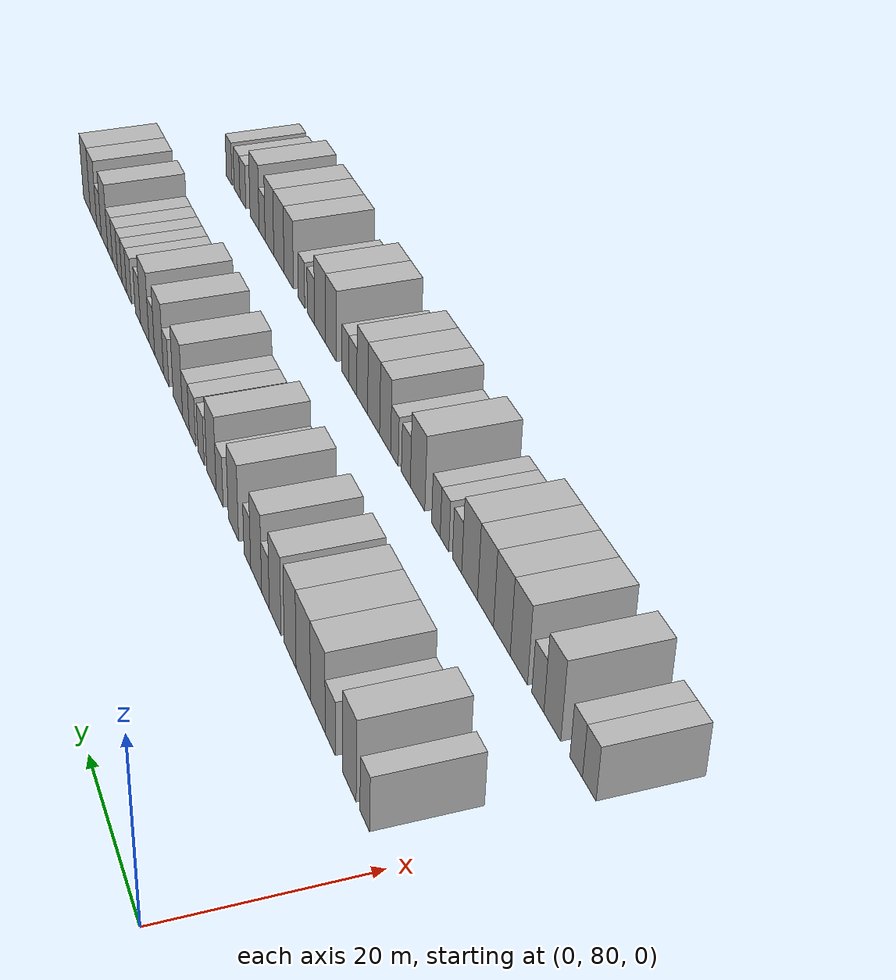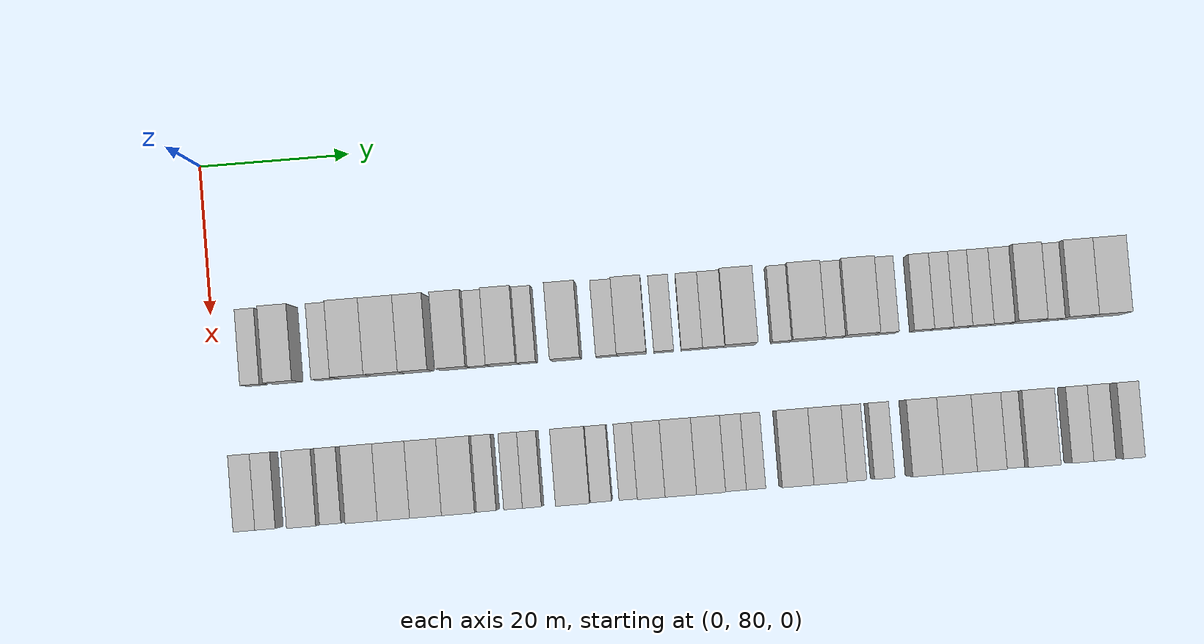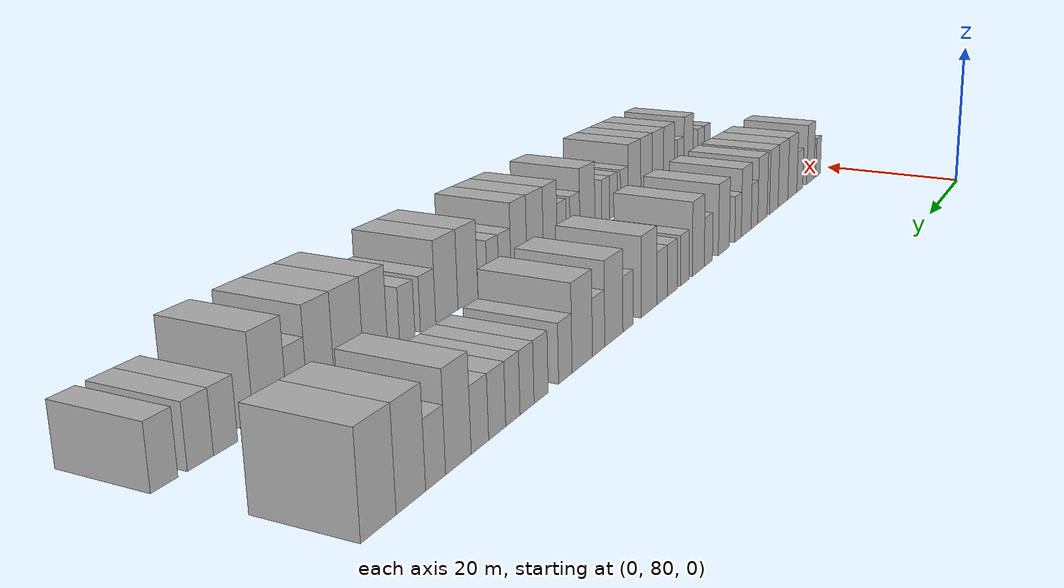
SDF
<sdf version="1.6">
 <world name="default">
  <model name="building_54">
   <static>1</static>
   <pose>25.0000 85.5860 0 0.000000 0.000000 0.000000</pose>
   <link name="link">
    <pose>0 0 3.00 0 0 0</pose>
    <collision name="collision"><geometry><box><size>10.0000 2.5500 6.0000</size></box></geometry></collision>
    <visual name="visual">
     <cast_shadows>0</cast_shadows>
     <geometry><box><size>10.0000 2.5500 6.0000</size></box></geometry>
     <material>
      <script>
       <uri>model://HANNAS_wall/materials/scripts</uri>
       <uri>model://HANNAS_wall/materials/textures</uri>
       <name>vrc/HANNAS_wall</name>
      </script>
     </material>
    </visual>
   </link>
  </model>
  <model name="building_55">
   <static>1</static>
   <pose>25.0000 89.7523 0 0.000000 0.000000 0.000000</pose>
   <link name="link">
    <pose>0 0 4.50 0 0 0</pose>
    <collision name="collision"><geometry><box><size>10.0000 3.7826 9.0000</size></box></geometry></collision>
    <visual name="visual">
     <cast_shadows>0</cast_shadows>
     <geometry><box><size>10.0000 3.7826 9.0000</size></box></geometry>
     <material>
      <script>
       <uri>model://HANNAS_wall/materials/scripts</uri>
       <uri>model://HANNAS_wall/materials/textures</uri>
       <name>vrc/HANNAS_wall</name>
      </script>
     </material>
    </visual>
   </link>
  </model>
  <model name="building_56">
   <static>1</static>
   <pose>25.0000 95.1099 0 0.000000 0.000000 0.000000</pose>
   <link name="link">
    <pose>0 0 3.00 0 0 0</pose>
    <collision name="collision"><geometry><box><size>10.0000 2.9327 6.0000</size></box></geometry></collision>
    <visual name="visual">
     <cast_shadows>0</cast_shadows>
     <geometry><box><size>10.0000 2.9327 6.0000</size></box></geometry>
     <material>
      <script>
       <uri>model://HANNAS_wall/materials/scripts</uri>
       <uri>model://HANNAS_wall/materials/textures</uri>
       <name>vrc/HANNAS_wall</name>
      </script>
     </material>
    </visual>
   </link>
  </model>
  <model name="building_57">
   <static>1</static>
   <pose>25.0000 98.7507 0 0.000000 0.000000 0.000000</pose>
   <link name="link">
    <pose>0 0 4.50 0 0 0</pose>
    <collision name="collision"><geometry><box><size>10.0000 4.3488 9.0000</size></box></geometry></collision>
    <visual name="visual">
     <cast_shadows>0</cast_shadows>
     <geometry><box><size>10.0000 4.3488 9.0000</size></box></geometry>
     <material>
      <script>
       <uri>model://HANNAS_wall/materials/scripts</uri>
       <uri>model://HANNAS_wall/materials/textures</uri>
       <name>vrc/HANNAS_wall</name>
      </script>
     </material>
    </visual>
   </link>
  </model>
  <model name="building_58">
   <static>1</static>
   <pose>25.0000 103.1546 0 0.000000 0.000000 0.000000</pose>
   <link name="link">
    <pose>0 0 4.50 0 0 0</pose>
    <collision name="collision"><geometry><box><size>10.0000 4.4590 9.0000</size></box></geometry></collision>
    <visual name="visual">
     <cast_shadows>0</cast_shadows>
     <geometry><box><size>10.0000 4.4590 9.0000</size></box></geometry>
     <material>
      <script>
       <uri>model://HANNAS_wall/materials/scripts</uri>
       <uri>model://HANNAS_wall/materials/textures</uri>
       <name>vrc/HANNAS_wall</name>
      </script>
     </material>
    </visual>
   </link>
  </model>
  <model name="building_59">
   <static>1</static>
   <pose>25.0000 107.3013 0 0.000000 0.000000 0.000000</pose>
   <link name="link">
    <pose>0 0 4.50 0 0 0</pose>
    <collision name="collision"><geometry><box><size>10.0000 3.8344 9.0000</size></box></geometry></collision>
    <visual name="visual">
     <cast_shadows>0</cast_shadows>
     <geometry><box><size>10.0000 3.8344 9.0000</size></box></geometry>
     <material>
      <script>
       <uri>model://HANNAS_wall/materials/scripts</uri>
       <uri>model://HANNAS_wall/materials/textures</uri>
       <name>vrc/HANNAS_wall</name>
      </script>
     </material>
    </visual>
   </link>
  </model>
  <model name="building_60">
   <static>1</static>
   <pose>25.0000 112.1923 0 0.000000 0.000000 0.000000</pose>
   <link name="link">
    <pose>0 0 4.50 0 0 0</pose>
    <collision name="collision"><geometry><box><size>10.0000 3.9476 9.0000</size></box></geometry></collision>
    <visual name="visual">
     <cast_shadows>0</cast_shadows>
     <geometry><box><size>10.0000 3.9476 9.0000</size></box></geometry>
     <material>
      <script>
       <uri>model://HANNAS_wall/materials/scripts</uri>
       <uri>model://HANNAS_wall/materials/textures</uri>
       <name>vrc/HANNAS_wall</name>
      </script>
     </material>
    </visual>
   </link>
  </model>
  <model name="building_61">
   <static>1</static>
   <pose>25.0000 115.4911 0 0.000000 0.000000 0.000000</pose>
   <link name="link">
    <pose>0 0 3.00 0 0 0</pose>
    <collision name="collision"><geometry><box><size>10.0000 2.6501 6.0000</size></box></geometry></collision>
    <visual name="visual">
     <cast_shadows>0</cast_shadows>
     <geometry><box><size>10.0000 2.6501 6.0000</size></box></geometry>
     <material>
      <script>
       <uri>model://HANNAS_wall/materials/scripts</uri>
       <uri>model://HANNAS_wall/materials/textures</uri>
       <name>vrc/HANNAS_wall</name>
      </script>
     </material>
    </visual>
   </link>
  </model>
  <model name="building_62">
   <static>1</static>
   <pose>25.0000 118.7586 0 0.000000 0.000000 0.000000</pose>
   <link name="link">
    <pose>0 0 4.50 0 0 0</pose>
    <collision name="collision"><geometry><box><size>10.0000 3.8848 9.0000</size></box></geometry></collision>
    <visual name="visual">
     <cast_shadows>0</cast_shadows>
     <geometry><box><size>10.0000 3.8848 9.0000</size></box></geometry>
     <material>
      <script>
       <uri>model://HANNAS_wall/materials/scripts</uri>
       <uri>model://HANNAS_wall/materials/textures</uri>
       <name>vrc/HANNAS_wall</name>
      </script>
     </material>
    </visual>
   </link>
  </model>
  <model name="building_63">
   <static>1</static>
   <pose>25.0000 121.9209 0 0.000000 0.000000 0.000000</pose>
   <link name="link">
    <pose>0 0 3.00 0 0 0</pose>
    <collision name="collision"><geometry><box><size>10.0000 2.4398 6.0000</size></box></geometry></collision>
    <visual name="visual">
     <cast_shadows>0</cast_shadows>
     <geometry><box><size>10.0000 2.4398 6.0000</size></box></geometry>
     <material>
      <script>
       <uri>model://HANNAS_wall/materials/scripts</uri>
       <uri>model://HANNAS_wall/materials/textures</uri>
       <name>vrc/HANNAS_wall</name>
      </script>
     </material>
    </visual>
   </link>
  </model>
  <model name="building_64">
   <static>1</static>
   <pose>25.0000 127.0968 0 0.000000 0.000000 0.000000</pose>
   <link name="link">
    <pose>0 0 4.50 0 0 0</pose>
    <collision name="collision"><geometry><box><size>10.0000 3.9120 9.0000</size></box></geometry></collision>
    <visual name="visual">
     <cast_shadows>0</cast_shadows>
     <geometry><box><size>10.0000 3.9120 9.0000</size></box></geometry>
     <material>
      <script>
       <uri>model://HANNAS_wall/materials/scripts</uri>
       <uri>model://HANNAS_wall/materials/textures</uri>
       <name>vrc/HANNAS_wall</name>
      </script>
     </material>
    </visual>
   </link>
  </model>
  <model name="building_65">
   <static>1</static>
   <pose>25.0000 132.4365 0 0.000000 0.000000 0.000000</pose>
   <link name="link">
    <pose>0 0 3.00 0 0 0</pose>
    <collision name="collision"><geometry><box><size>10.0000 2.7674 6.0000</size></box></geometry></collision>
    <visual name="visual">
     <cast_shadows>0</cast_shadows>
     <geometry><box><size>10.0000 2.7674 6.0000</size></box></geometry>
     <material>
      <script>
       <uri>model://HANNAS_wall/materials/scripts</uri>
       <uri>model://HANNAS_wall/materials/textures</uri>
       <name>vrc/HANNAS_wall</name>
      </script>
     </material>
    </visual>
   </link>
  </model>
  <model name="building_66">
   <static>1</static>
   <pose>25.0000 135.7534 0 0.000000 0.000000 0.000000</pose>
   <link name="link">
    <pose>0 0 4.50 0 0 0</pose>
    <collision name="collision"><geometry><box><size>10.0000 3.8664 9.0000</size></box></geometry></collision>
    <visual name="visual">
     <cast_shadows>0</cast_shadows>
     <geometry><box><size>10.0000 3.8664 9.0000</size></box></geometry>
     <material>
      <script>
       <uri>model://HANNAS_wall/materials/scripts</uri>
       <uri>model://HANNAS_wall/materials/textures</uri>
       <name>vrc/HANNAS_wall</name>
      </script>
     </material>
    </visual>
   </link>
  </model>
  <model name="building_67">
   <static>1</static>
   <pose>25.0000 139.9973 0 0.000000 0.000000 0.000000</pose>
   <link name="link">
    <pose>0 0 3.00 0 0 0</pose>
    <collision name="collision"><geometry><box><size>10.0000 2.6214 6.0000</size></box></geometry></collision>
    <visual name="visual">
     <cast_shadows>0</cast_shadows>
     <geometry><box><size>10.0000 2.6214 6.0000</size></box></geometry>
     <material>
      <script>
       <uri>model://HANNAS_wall/materials/scripts</uri>
       <uri>model://HANNAS_wall/materials/textures</uri>
       <name>vrc/HANNAS_wall</name>
      </script>
     </material>
    </visual>
   </link>
  </model>
  <model name="building_68">
   <static>1</static>
   <pose>25.0000 143.7185 0 0.000000 0.000000 0.000000</pose>
   <link name="link">
    <pose>0 0 3.00 0 0 0</pose>
    <collision name="collision"><geometry><box><size>10.0000 2.8210 6.0000</size></box></geometry></collision>
    <visual name="visual">
     <cast_shadows>0</cast_shadows>
     <geometry><box><size>10.0000 2.8210 6.0000</size></box></geometry>
     <material>
      <script>
       <uri>model://HANNAS_wall/materials/scripts</uri>
       <uri>model://HANNAS_wall/materials/textures</uri>
       <name>vrc/HANNAS_wall</name>
      </script>
     </material>
    </visual>
   </link>
  </model>
  <model name="building_69">
   <static>1</static>
   <pose>25.0000 146.5815 0 0.000000 0.000000 0.000000</pose>
   <link name="link">
    <pose>0 0 3.00 0 0 0</pose>
    <collision name="collision"><geometry><box><size>10.0000 2.9051 6.0000</size></box></geometry></collision>
    <visual name="visual">
     <cast_shadows>0</cast_shadows>
     <geometry><box><size>10.0000 2.9051 6.0000</size></box></geometry>
     <material>
      <script>
       <uri>model://HANNAS_wall/materials/scripts</uri>
       <uri>model://HANNAS_wall/materials/textures</uri>
       <name>vrc/HANNAS_wall</name>
      </script>
     </material>
    </visual>
   </link>
  </model>
  <model name="building_70">
   <static>1</static>
   <pose>25.0000 150.1681 0 0.000000 0.000000 0.000000</pose>
   <link name="link">
    <pose>0 0 4.50 0 0 0</pose>
    <collision name="collision"><geometry><box><size>10.0000 4.2681 9.0000</size></box></geometry></collision>
    <visual name="visual">
     <cast_shadows>0</cast_shadows>
     <geometry><box><size>10.0000 4.2681 9.0000</size></box></geometry>
     <material>
      <script>
       <uri>model://HANNAS_wall/materials/scripts</uri>
       <uri>model://HANNAS_wall/materials/textures</uri>
       <name>vrc/HANNAS_wall</name>
      </script>
     </material>
    </visual>
   </link>
  </model>
  <model name="building_71">
   <static>1</static>
   <pose>25.0000 155.5696 0 0.000000 0.000000 0.000000</pose>
   <link name="link">
    <pose>0 0 3.00 0 0 0</pose>
    <collision name="collision"><geometry><box><size>10.0000 2.5348 6.0000</size></box></geometry></collision>
    <visual name="visual">
     <cast_shadows>0</cast_shadows>
     <geometry><box><size>10.0000 2.5348 6.0000</size></box></geometry>
     <material>
      <script>
       <uri>model://HANNAS_wall/materials/scripts</uri>
       <uri>model://HANNAS_wall/materials/textures</uri>
       <name>vrc/HANNAS_wall</name>
      </script>
     </material>
    </visual>
   </link>
  </model>
  <model name="building_72">
   <static>1</static>
   <pose>25.0000 158.9892 0 0.000000 0.000000 0.000000</pose>
   <link name="link">
    <pose>0 0 4.50 0 0 0</pose>
    <collision name="collision"><geometry><box><size>10.0000 4.3045 9.0000</size></box></geometry></collision>
    <visual name="visual">
     <cast_shadows>0</cast_shadows>
     <geometry><box><size>10.0000 4.3045 9.0000</size></box></geometry>
     <material>
      <script>
       <uri>model://HANNAS_wall/materials/scripts</uri>
       <uri>model://HANNAS_wall/materials/textures</uri>
       <name>vrc/HANNAS_wall</name>
      </script>
     </material>
    </visual>
   </link>
  </model>
  <model name="building_73">
   <static>1</static>
   <pose>25.0000 162.5300 0 0.000000 0.000000 0.000000</pose>
   <link name="link">
    <pose>0 0 3.00 0 0 0</pose>
    <collision name="collision"><geometry><box><size>10.0000 2.7771 6.0000</size></box></geometry></collision>
    <visual name="visual">
     <cast_shadows>0</cast_shadows>
     <geometry><box><size>10.0000 2.7771 6.0000</size></box></geometry>
     <material>
      <script>
       <uri>model://HANNAS_wall/materials/scripts</uri>
       <uri>model://HANNAS_wall/materials/textures</uri>
       <name>vrc/HANNAS_wall</name>
      </script>
     </material>
    </visual>
   </link>
  </model>
  <model name="building_74">
   <static>1</static>
   <pose>25.0000 166.0913 0 0.000000 0.000000 0.000000</pose>
   <link name="link">
    <pose>0 0 4.50 0 0 0</pose>
    <collision name="collision"><geometry><box><size>10.0000 4.3456 9.0000</size></box></geometry></collision>
    <visual name="visual">
     <cast_shadows>0</cast_shadows>
     <geometry><box><size>10.0000 4.3456 9.0000</size></box></geometry>
     <material>
      <script>
       <uri>model://HANNAS_wall/materials/scripts</uri>
       <uri>model://HANNAS_wall/materials/textures</uri>
       <name>vrc/HANNAS_wall</name>
      </script>
     </material>
    </visual>
   </link>
  </model>
  <model name="building_75">
   <static>1</static>
   <pose>25.0000 169.6280 0 0.000000 0.000000 0.000000</pose>
   <link name="link">
    <pose>0 0 3.00 0 0 0</pose>
    <collision name="collision"><geometry><box><size>10.0000 2.7278 6.0000</size></box></geometry></collision>
    <visual name="visual">
     <cast_shadows>0</cast_shadows>
     <geometry><box><size>10.0000 2.7278 6.0000</size></box></geometry>
     <material>
      <script>
       <uri>model://HANNAS_wall/materials/scripts</uri>
       <uri>model://HANNAS_wall/materials/textures</uri>
       <name>vrc/HANNAS_wall</name>
      </script>
     </material>
    </visual>
   </link>
  </model>
  <model name="building_76">
   <static>1</static>
   <pose>25.0000 174.3252 0 0.000000 0.000000 0.000000</pose>
   <link name="link">
    <pose>0 0 3.00 0 0 0</pose>
    <collision name="collision"><geometry><box><size>10.0000 2.6667 6.0000</size></box></geometry></collision>
    <visual name="visual">
     <cast_shadows>0</cast_shadows>
     <geometry><box><size>10.0000 2.6667 6.0000</size></box></geometry>
     <material>
      <script>
       <uri>model://HANNAS_wall/materials/scripts</uri>
       <uri>model://HANNAS_wall/materials/textures</uri>
       <name>vrc/HANNAS_wall</name>
      </script>
     </material>
    </visual>
   </link>
  </model>
  <model name="building_77">
   <static>1</static>
   <pose>25.0000 176.9212 0 0.000000 0.000000 0.000000</pose>
   <link name="link">
    <pose>0 0 3.00 0 0 0</pose>
    <collision name="collision"><geometry><box><size>10.0000 2.5252 6.0000</size></box></geometry></collision>
    <visual name="visual">
     <cast_shadows>0</cast_shadows>
     <geometry><box><size>10.0000 2.5252 6.0000</size></box></geometry>
     <material>
      <script>
       <uri>model://HANNAS_wall/materials/scripts</uri>
       <uri>model://HANNAS_wall/materials/textures</uri>
       <name>vrc/HANNAS_wall</name>
      </script>
     </material>
    </visual>
   </link>
  </model>
  <model name="building_78">
   <static>1</static>
   <pose>25.0000 179.4303 0 0.000000 0.000000 0.000000</pose>
   <link name="link">
    <pose>0 0 3.00 0 0 0</pose>
    <collision name="collision"><geometry><box><size>10.0000 2.4930 6.0000</size></box></geometry></collision>
    <visual name="visual">
     <cast_shadows>0</cast_shadows>
     <geometry><box><size>10.0000 2.4930 6.0000</size></box></geometry>
     <material>
      <script>
       <uri>model://HANNAS_wall/materials/scripts</uri>
       <uri>model://HANNAS_wall/materials/textures</uri>
       <name>vrc/HANNAS_wall</name>
      </script>
     </material>
    </visual>
   </link>
  </model>
  <model name="building_79">
   <static>1</static>
   <pose>25.0000 182.0855 0 0.000000 0.000000 0.000000</pose>
   <link name="link">
    <pose>0 0 3.00 0 0 0</pose>
    <collision name="collision"><geometry><box><size>10.0000 2.8174 6.0000</size></box></geometry></collision>
    <visual name="visual">
     <cast_shadows>0</cast_shadows>
     <geometry><box><size>10.0000 2.8174 6.0000</size></box></geometry>
     <material>
      <script>
       <uri>model://HANNAS_wall/materials/scripts</uri>
       <uri>model://HANNAS_wall/materials/textures</uri>
       <name>vrc/HANNAS_wall</name>
      </script>
     </material>
    </visual>
   </link>
  </model>
  <model name="building_80">
   <static>1</static>
   <pose>25.0000 184.8703 0 0.000000 0.000000 0.000000</pose>
   <link name="link">
    <pose>0 0 3.00 0 0 0</pose>
    <collision name="collision"><geometry><box><size>10.0000 2.7523 6.0000</size></box></geometry></collision>
    <visual name="visual">
     <cast_shadows>0</cast_shadows>
     <geometry><box><size>10.0000 2.7523 6.0000</size></box></geometry>
     <material>
      <script>
       <uri>model://HANNAS_wall/materials/scripts</uri>
       <uri>model://HANNAS_wall/materials/textures</uri>
       <name>vrc/HANNAS_wall</name>
      </script>
     </material>
    </visual>
   </link>
  </model>
  <model name="building_81">
   <static>1</static>
   <pose>25.0000 188.1498 0 0.000000 0.000000 0.000000</pose>
   <link name="link">
    <pose>0 0 4.50 0 0 0</pose>
    <collision name="collision"><geometry><box><size>10.0000 3.8069 9.0000</size></box></geometry></collision>
    <visual name="visual">
     <cast_shadows>0</cast_shadows>
     <geometry><box><size>10.0000 3.8069 9.0000</size></box></geometry>
     <material>
      <script>
       <uri>model://HANNAS_wall/materials/scripts</uri>
       <uri>model://HANNAS_wall/materials/textures</uri>
       <name>vrc/HANNAS_wall</name>
      </script>
     </material>
    </visual>
   </link>
  </model>
  <model name="building_82">
   <static>1</static>
   <pose>25.0000 191.4503 0 0.000000 0.000000 0.000000</pose>
   <link name="link">
    <pose>0 0 3.00 0 0 0</pose>
    <collision name="collision"><geometry><box><size>10.0000 2.7940 6.0000</size></box></geometry></collision>
    <visual name="visual">
     <cast_shadows>0</cast_shadows>
     <geometry><box><size>10.0000 2.7940 6.0000</size></box></geometry>
     <material>
      <script>
       <uri>model://HANNAS_wall/materials/scripts</uri>
       <uri>model://HANNAS_wall/materials/textures</uri>
       <name>vrc/HANNAS_wall</name>
      </script>
     </material>
    </visual>
   </link>
  </model>
  <model name="building_83">
   <static>1</static>
   <pose>25.0000 194.7949 0 0.000000 0.000000 0.000000</pose>
   <link name="link">
    <pose>0 0 4.50 0 0 0</pose>
    <collision name="collision"><geometry><box><size>10.0000 3.8952 9.0000</size></box></geometry></collision>
    <visual name="visual">
     <cast_shadows>0</cast_shadows>
     <geometry><box><size>10.0000 3.8952 9.0000</size></box></geometry>
     <material>
      <script>
       <uri>model://HANNAS_wall/materials/scripts</uri>
       <uri>model://HANNAS_wall/materials/textures</uri>
       <name>vrc/HANNAS_wall</name>
      </script>
     </material>
    </visual>
   </link>
  </model>
  <model name="building_84">
   <static>1</static>
   <pose>25.0000 198.9164 0 0.000000 0.000000 0.000000</pose>
   <link name="link">
    <pose>0 0 4.50 0 0 0</pose>
    <collision name="collision"><geometry><box><size>10.0000 4.3479 9.0000</size></box></geometry></collision>
    <visual name="visual">
     <cast_shadows>0</cast_shadows>
     <geometry><box><size>10.0000 4.3479 9.0000</size></box></geometry>
     <material>
      <script>
       <uri>model://HANNAS_wall/materials/scripts</uri>
       <uri>model://HANNAS_wall/materials/textures</uri>
       <name>vrc/HANNAS_wall</name>
      </script>
     </material>
    </visual>
   </link>
  </model>
  <model name="building_156">
   <static>1</static>
   <pose>44.0000 83.4710 0 0.000000 0.000000 0.000000</pose>
   <link name="link">
    <pose>0 0 3.00 0 0 0</pose>
    <collision name="collision"><geometry><box><size>10.0000 2.8450 6.0000</size></box></geometry></collision>
    <visual name="visual">
     <cast_shadows>0</cast_shadows>
     <geometry><box><size>10.0000 2.8450 6.0000</size></box></geometry>
     <material>
      <script>
       <uri>model://HANNAS_wall/materials/scripts</uri>
       <uri>model://HANNAS_wall/materials/textures</uri>
       <name>vrc/HANNAS_wall</name>
      </script>
     </material>
    </visual>
   </link>
  </model>
  <model name="building_157">
   <static>1</static>
   <pose>44.0000 86.2303 0 0.000000 0.000000 0.000000</pose>
   <link name="link">
    <pose>0 0 3.00 0 0 0</pose>
    <collision name="collision"><geometry><box><size>10.0000 2.6737 6.0000</size></box></geometry></collision>
    <visual name="visual">
     <cast_shadows>0</cast_shadows>
     <geometry><box><size>10.0000 2.6737 6.0000</size></box></geometry>
     <material>
      <script>
       <uri>model://HANNAS_wall/materials/scripts</uri>
       <uri>model://HANNAS_wall/materials/textures</uri>
       <name>vrc/HANNAS_wall</name>
      </script>
     </material>
    </visual>
   </link>
  </model>
  <model name="building_158">
   <static>1</static>
   <pose>44.0000 91.4671 0 0.000000 0.000000 0.000000</pose>
   <link name="link">
    <pose>0 0 4.50 0 0 0</pose>
    <collision name="collision"><geometry><box><size>10.0000 3.7999 9.0000</size></box></geometry></collision>
    <visual name="visual">
     <cast_shadows>0</cast_shadows>
     <geometry><box><size>10.0000 3.7999 9.0000</size></box></geometry>
     <material>
      <script>
       <uri>model://HANNAS_wall/materials/scripts</uri>
       <uri>model://HANNAS_wall/materials/textures</uri>
       <name>vrc/HANNAS_wall</name>
      </script>
     </material>
    </visual>
   </link>
  </model>
  <model name="building_159">
   <static>1</static>
   <pose>44.0000 94.7645 0 0.000000 0.000000 0.000000</pose>
   <link name="link">
    <pose>0 0 3.00 0 0 0</pose>
    <collision name="collision"><geometry><box><size>10.0000 2.7949 6.0000</size></box></geometry></collision>
    <visual name="visual">
     <cast_shadows>0</cast_shadows>
     <geometry><box><size>10.0000 2.7949 6.0000</size></box></geometry>
     <material>
      <script>
       <uri>model://HANNAS_wall/materials/scripts</uri>
       <uri>model://HANNAS_wall/materials/textures</uri>
       <name>vrc/HANNAS_wall</name>
      </script>
     </material>
    </visual>
   </link>
  </model>
  <model name="building_160">
   <static>1</static>
   <pose>44.0000 99.2504 0 0.000000 0.000000 0.000000</pose>
   <link name="link">
    <pose>0 0 4.50 0 0 0</pose>
    <collision name="collision"><geometry><box><size>10.0000 4.1767 9.0000</size></box></geometry></collision>
    <visual name="visual">
     <cast_shadows>0</cast_shadows>
     <geometry><box><size>10.0000 4.1767 9.0000</size></box></geometry>
     <material>
      <script>
       <uri>model://HANNAS_wall/materials/scripts</uri>
       <uri>model://HANNAS_wall/materials/textures</uri>
       <name>vrc/HANNAS_wall</name>
      </script>
     </material>
    </visual>
   </link>
  </model>
  <model name="building_161">
   <static>1</static>
   <pose>44.0000 103.4302 0 0.000000 0.000000 0.000000</pose>
   <link name="link">
    <pose>0 0 4.50 0 0 0</pose>
    <collision name="collision"><geometry><box><size>10.0000 4.1830 9.0000</size></box></geometry></collision>
    <visual name="visual">
     <cast_shadows>0</cast_shadows>
     <geometry><box><size>10.0000 4.1830 9.0000</size></box></geometry>
     <material>
      <script>
       <uri>model://HANNAS_wall/materials/scripts</uri>
       <uri>model://HANNAS_wall/materials/textures</uri>
       <name>vrc/HANNAS_wall</name>
      </script>
     </material>
    </visual>
   </link>
  </model>
  <model name="building_162">
   <static>1</static>
   <pose>44.0000 107.5858 0 0.000000 0.000000 0.000000</pose>
   <link name="link">
    <pose>0 0 4.50 0 0 0</pose>
    <collision name="collision"><geometry><box><size>10.0000 4.1281 9.0000</size></box></geometry></collision>
    <visual name="visual">
     <cast_shadows>0</cast_shadows>
     <geometry><box><size>10.0000 4.1281 9.0000</size></box></geometry>
     <material>
      <script>
       <uri>model://HANNAS_wall/materials/scripts</uri>
       <uri>model://HANNAS_wall/materials/textures</uri>
       <name>vrc/HANNAS_wall</name>
      </script>
     </material>
    </visual>
   </link>
  </model>
  <model name="building_163">
   <static>1</static>
   <pose>44.0000 111.7878 0 0.000000 0.000000 0.000000</pose>
   <link name="link">
    <pose>0 0 4.50 0 0 0</pose>
    <collision name="collision"><geometry><box><size>10.0000 4.2760 9.0000</size></box></geometry></collision>
    <visual name="visual">
     <cast_shadows>0</cast_shadows>
     <geometry><box><size>10.0000 4.2760 9.0000</size></box></geometry>
     <material>
      <script>
       <uri>model://HANNAS_wall/materials/scripts</uri>
       <uri>model://HANNAS_wall/materials/textures</uri>
       <name>vrc/HANNAS_wall</name>
      </script>
     </material>
    </visual>
   </link>
  </model>
  <model name="building_164">
   <static>1</static>
   <pose>44.0000 115.2066 0 0.000000 0.000000 0.000000</pose>
   <link name="link">
    <pose>0 0 3.00 0 0 0</pose>
    <collision name="collision"><geometry><box><size>10.0000 2.5614 6.0000</size></box></geometry></collision>
    <visual name="visual">
     <cast_shadows>0</cast_shadows>
     <geometry><box><size>10.0000 2.5614 6.0000</size></box></geometry>
     <material>
      <script>
       <uri>model://HANNAS_wall/materials/scripts</uri>
       <uri>model://HANNAS_wall/materials/textures</uri>
       <name>vrc/HANNAS_wall</name>
      </script>
     </material>
    </visual>
   </link>
  </model>
  <model name="building_165">
   <static>1</static>
   <pose>44.0000 118.7137 0 0.000000 0.000000 0.000000</pose>
   <link name="link">
    <pose>0 0 3.00 0 0 0</pose>
    <collision name="collision"><geometry><box><size>10.0000 2.4529 6.0000</size></box></geometry></collision>
    <visual name="visual">
     <cast_shadows>0</cast_shadows>
     <geometry><box><size>10.0000 2.4529 6.0000</size></box></geometry>
     <material>
      <script>
       <uri>model://HANNAS_wall/materials/scripts</uri>
       <uri>model://HANNAS_wall/materials/textures</uri>
       <name>vrc/HANNAS_wall</name>
      </script>
     </material>
    </visual>
   </link>
  </model>
  <model name="building_166">
   <static>1</static>
   <pose>44.0000 121.1848 0 0.000000 0.000000 0.000000</pose>
   <link name="link">
    <pose>0 0 3.00 0 0 0</pose>
    <collision name="collision"><geometry><box><size>10.0000 2.4892 6.0000</size></box></geometry></collision>
    <visual name="visual">
     <cast_shadows>0</cast_shadows>
     <geometry><box><size>10.0000 2.4892 6.0000</size></box></geometry>
     <material>
      <script>
       <uri>model://HANNAS_wall/materials/scripts</uri>
       <uri>model://HANNAS_wall/materials/textures</uri>
       <name>vrc/HANNAS_wall</name>
      </script>
     </material>
    </visual>
   </link>
  </model>
  <model name="building_167">
   <static>1</static>
   <pose>44.0000 126.6370 0 0.000000 0.000000 0.000000</pose>
   <link name="link">
    <pose>0 0 4.50 0 0 0</pose>
    <collision name="collision"><geometry><box><size>10.0000 4.4152 9.0000</size></box></geometry></collision>
    <visual name="visual">
     <cast_shadows>0</cast_shadows>
     <geometry><box><size>10.0000 4.4152 9.0000</size></box></geometry>
     <material>
      <script>
       <uri>model://HANNAS_wall/materials/scripts</uri>
       <uri>model://HANNAS_wall/materials/textures</uri>
       <name>vrc/HANNAS_wall</name>
      </script>
     </material>
    </visual>
   </link>
  </model>
  <model name="building_168">
   <static>1</static>
   <pose>44.0000 130.2221 0 0.000000 0.000000 0.000000</pose>
   <link name="link">
    <pose>0 0 3.00 0 0 0</pose>
    <collision name="collision"><geometry><box><size>10.0000 2.7549 6.0000</size></box></geometry></collision>
    <visual name="visual">
     <cast_shadows>0</cast_shadows>
     <geometry><box><size>10.0000 2.7549 6.0000</size></box></geometry>
     <material>
      <script>
       <uri>model://HANNAS_wall/materials/scripts</uri>
       <uri>model://HANNAS_wall/materials/textures</uri>
       <name>vrc/HANNAS_wall</name>
      </script>
     </material>
    </visual>
   </link>
  </model>
  <model name="building_169">
   <static>1</static>
   <pose>44.0000 133.8217 0 0.000000 0.000000 0.000000</pose>
   <link name="link">
    <pose>0 0 3.00 0 0 0</pose>
    <collision name="collision"><geometry><box><size>10.0000 2.4442 6.0000</size></box></geometry></collision>
    <visual name="visual">
     <cast_shadows>0</cast_shadows>
     <geometry><box><size>10.0000 2.4442 6.0000</size></box></geometry>
     <material>
      <script>
       <uri>model://HANNAS_wall/materials/scripts</uri>
       <uri>model://HANNAS_wall/materials/textures</uri>
       <name>vrc/HANNAS_wall</name>
      </script>
     </material>
    </visual>
   </link>
  </model>
  <model name="building_170">
   <static>1</static>
   <pose>44.0000 136.8461 0 0.000000 0.000000 0.000000</pose>
   <link name="link">
    <pose>0 0 4.50 0 0 0</pose>
    <collision name="collision"><geometry><box><size>10.0000 3.6046 9.0000</size></box></geometry></collision>
    <visual name="visual">
     <cast_shadows>0</cast_shadows>
     <geometry><box><size>10.0000 3.6046 9.0000</size></box></geometry>
     <material>
      <script>
       <uri>model://HANNAS_wall/materials/scripts</uri>
       <uri>model://HANNAS_wall/materials/textures</uri>
       <name>vrc/HANNAS_wall</name>
      </script>
     </material>
    </visual>
   </link>
  </model>
  <model name="building_171">
   <static>1</static>
   <pose>44.0000 140.6879 0 0.000000 0.000000 0.000000</pose>
   <link name="link">
    <pose>0 0 4.50 0 0 0</pose>
    <collision name="collision"><geometry><box><size>10.0000 4.0791 9.0000</size></box></geometry></collision>
    <visual name="visual">
     <cast_shadows>0</cast_shadows>
     <geometry><box><size>10.0000 4.0791 9.0000</size></box></geometry>
     <material>
      <script>
       <uri>model://HANNAS_wall/materials/scripts</uri>
       <uri>model://HANNAS_wall/materials/textures</uri>
       <name>vrc/HANNAS_wall</name>
      </script>
     </material>
    </visual>
   </link>
  </model>
  <model name="building_172">
   <static>1</static>
   <pose>44.0000 144.6121 0 0.000000 0.000000 0.000000</pose>
   <link name="link">
    <pose>0 0 4.50 0 0 0</pose>
    <collision name="collision"><geometry><box><size>10.0000 3.7693 9.0000</size></box></geometry></collision>
    <visual name="visual">
     <cast_shadows>0</cast_shadows>
     <geometry><box><size>10.0000 3.7693 9.0000</size></box></geometry>
     <material>
      <script>
       <uri>model://HANNAS_wall/materials/scripts</uri>
       <uri>model://HANNAS_wall/materials/textures</uri>
       <name>vrc/HANNAS_wall</name>
      </script>
     </material>
    </visual>
   </link>
  </model>
  <model name="building_173">
   <static>1</static>
   <pose>44.0000 147.8975 0 0.000000 0.000000 0.000000</pose>
   <link name="link">
    <pose>0 0 3.00 0 0 0</pose>
    <collision name="collision"><geometry><box><size>10.0000 2.8016 6.0000</size></box></geometry></collision>
    <visual name="visual">
     <cast_shadows>0</cast_shadows>
     <geometry><box><size>10.0000 2.8016 6.0000</size></box></geometry>
     <material>
      <script>
       <uri>model://HANNAS_wall/materials/scripts</uri>
       <uri>model://HANNAS_wall/materials/textures</uri>
       <name>vrc/HANNAS_wall</name>
      </script>
     </material>
    </visual>
   </link>
  </model>
  <model name="building_174">
   <static>1</static>
   <pose>44.0000 150.5739 0 0.000000 0.000000 0.000000</pose>
   <link name="link">
    <pose>0 0 3.00 0 0 0</pose>
    <collision name="collision"><geometry><box><size>10.0000 2.5512 6.0000</size></box></geometry></collision>
    <visual name="visual">
     <cast_shadows>0</cast_shadows>
     <geometry><box><size>10.0000 2.5512 6.0000</size></box></geometry>
     <material>
      <script>
       <uri>model://HANNAS_wall/materials/scripts</uri>
       <uri>model://HANNAS_wall/materials/textures</uri>
       <name>vrc/HANNAS_wall</name>
      </script>
     </material>
    </visual>
   </link>
  </model>
  <model name="building_175">
   <static>1</static>
   <pose>44.0000 155.9040 0 0.000000 0.000000 0.000000</pose>
   <link name="link">
    <pose>0 0 4.50 0 0 0</pose>
    <collision name="collision"><geometry><box><size>10.0000 4.1091 9.0000</size></box></geometry></collision>
    <visual name="visual">
     <cast_shadows>0</cast_shadows>
     <geometry><box><size>10.0000 4.1091 9.0000</size></box></geometry>
     <material>
      <script>
       <uri>model://HANNAS_wall/materials/scripts</uri>
       <uri>model://HANNAS_wall/materials/textures</uri>
       <name>vrc/HANNAS_wall</name>
      </script>
     </material>
    </visual>
   </link>
  </model>
  <model name="building_176">
   <static>1</static>
   <pose>44.0000 160.1210 0 0.000000 0.000000 0.000000</pose>
   <link name="link">
    <pose>0 0 4.50 0 0 0</pose>
    <collision name="collision"><geometry><box><size>10.0000 4.3249 9.0000</size></box></geometry></collision>
    <visual name="visual">
     <cast_shadows>0</cast_shadows>
     <geometry><box><size>10.0000 4.3249 9.0000</size></box></geometry>
     <material>
      <script>
       <uri>model://HANNAS_wall/materials/scripts</uri>
       <uri>model://HANNAS_wall/materials/textures</uri>
       <name>vrc/HANNAS_wall</name>
      </script>
     </material>
    </visual>
   </link>
  </model>
  <model name="building_177">
   <static>1</static>
   <pose>44.0000 163.6917 0 0.000000 0.000000 0.000000</pose>
   <link name="link">
    <pose>0 0 3.00 0 0 0</pose>
    <collision name="collision"><geometry><box><size>10.0000 2.8165 6.0000</size></box></geometry></collision>
    <visual name="visual">
     <cast_shadows>0</cast_shadows>
     <geometry><box><size>10.0000 2.8165 6.0000</size></box></geometry>
     <material>
      <script>
       <uri>model://HANNAS_wall/materials/scripts</uri>
       <uri>model://HANNAS_wall/materials/textures</uri>
       <name>vrc/HANNAS_wall</name>
      </script>
     </material>
    </visual>
   </link>
  </model>
  <model name="building_178">
   <static>1</static>
   <pose>44.0000 167.4384 0 0.000000 0.000000 0.000000</pose>
   <link name="link">
    <pose>0 0 3.00 0 0 0</pose>
    <collision name="collision"><geometry><box><size>10.0000 2.6770 6.0000</size></box></geometry></collision>
    <visual name="visual">
     <cast_shadows>0</cast_shadows>
     <geometry><box><size>10.0000 2.6770 6.0000</size></box></geometry>
     <material>
      <script>
       <uri>model://HANNAS_wall/materials/scripts</uri>
       <uri>model://HANNAS_wall/materials/textures</uri>
       <name>vrc/HANNAS_wall</name>
      </script>
     </material>
    </visual>
   </link>
  </model>
  <model name="building_179">
   <static>1</static>
   <pose>44.0000 172.7451 0 0.000000 0.000000 0.000000</pose>
   <link name="link">
    <pose>0 0 4.50 0 0 0</pose>
    <collision name="collision"><geometry><box><size>10.0000 3.9365 9.0000</size></box></geometry></collision>
    <visual name="visual">
     <cast_shadows>0</cast_shadows>
     <geometry><box><size>10.0000 3.9365 9.0000</size></box></geometry>
     <material>
      <script>
       <uri>model://HANNAS_wall/materials/scripts</uri>
       <uri>model://HANNAS_wall/materials/textures</uri>
       <name>vrc/HANNAS_wall</name>
      </script>
     </material>
    </visual>
   </link>
  </model>
  <model name="building_180">
   <static>1</static>
   <pose>44.0000 176.9444 0 0.000000 0.000000 0.000000</pose>
   <link name="link">
    <pose>0 0 4.50 0 0 0</pose>
    <collision name="collision"><geometry><box><size>10.0000 4.4621 9.0000</size></box></geometry></collision>
    <visual name="visual">
     <cast_shadows>0</cast_shadows>
     <geometry><box><size>10.0000 4.4621 9.0000</size></box></geometry>
     <material>
      <script>
       <uri>model://HANNAS_wall/materials/scripts</uri>
       <uri>model://HANNAS_wall/materials/textures</uri>
       <name>vrc/HANNAS_wall</name>
      </script>
     </material>
    </visual>
   </link>
  </model>
  <model name="building_181">
   <static>1</static>
   <pose>44.0000 181.1103 0 0.000000 0.000000 0.000000</pose>
   <link name="link">
    <pose>0 0 4.50 0 0 0</pose>
    <collision name="collision"><geometry><box><size>10.0000 3.8696 9.0000</size></box></geometry></collision>
    <visual name="visual">
     <cast_shadows>0</cast_shadows>
     <geometry><box><size>10.0000 3.8696 9.0000</size></box></geometry>
     <material>
      <script>
       <uri>model://HANNAS_wall/materials/scripts</uri>
       <uri>model://HANNAS_wall/materials/textures</uri>
       <name>vrc/HANNAS_wall</name>
      </script>
     </material>
    </visual>
   </link>
  </model>
  <model name="building_182">
   <static>1</static>
   <pose>44.0000 184.4197 0 0.000000 0.000000 0.000000</pose>
   <link name="link">
    <pose>0 0 3.00 0 0 0</pose>
    <collision name="collision"><geometry><box><size>10.0000 2.7493 6.0000</size></box></geometry></collision>
    <visual name="visual">
     <cast_shadows>0</cast_shadows>
     <geometry><box><size>10.0000 2.7493 6.0000</size></box></geometry>
     <material>
      <script>
       <uri>model://HANNAS_wall/materials/scripts</uri>
       <uri>model://HANNAS_wall/materials/textures</uri>
       <name>vrc/HANNAS_wall</name>
      </script>
     </material>
    </visual>
   </link>
  </model>
  <model name="building_183">
   <static>1</static>
   <pose>44.0000 187.9131 0 0.000000 0.000000 0.000000</pose>
   <link name="link">
    <pose>0 0 4.50 0 0 0</pose>
    <collision name="collision"><geometry><box><size>10.0000 4.2374 9.0000</size></box></geometry></collision>
    <visual name="visual">
     <cast_shadows>0</cast_shadows>
     <geometry><box><size>10.0000 4.2374 9.0000</size></box></geometry>
     <material>
      <script>
       <uri>model://HANNAS_wall/materials/scripts</uri>
       <uri>model://HANNAS_wall/materials/textures</uri>
       <name>vrc/HANNAS_wall</name>
      </script>
     </material>
    </visual>
   </link>
  </model>
  <model name="building_184">
   <static>1</static>
   <pose>44.0000 193.4550 0 0.000000 0.000000 0.000000</pose>
   <link name="link">
    <pose>0 0 3.00 0 0 0</pose>
    <collision name="collision"><geometry><box><size>10.0000 2.8465 6.0000</size></box></geometry></collision>
    <visual name="visual">
     <cast_shadows>0</cast_shadows>
     <geometry><box><size>10.0000 2.8465 6.0000</size></box></geometry>
     <material>
      <script>
       <uri>model://HANNAS_wall/materials/scripts</uri>
       <uri>model://HANNAS_wall/materials/textures</uri>
       <name>vrc/HANNAS_wall</name>
      </script>
     </material>
    </visual>
   </link>
  </model>
  <model name="building_185">
   <static>1</static>
   <pose>44.0000 196.3299 0 0.000000 0.000000 0.000000</pose>
   <link name="link">
    <pose>0 0 3.00 0 0 0</pose>
    <collision name="collision"><geometry><box><size>10.0000 2.9031 6.0000</size></box></geometry></collision>
    <visual name="visual">
     <cast_shadows>0</cast_shadows>
     <geometry><box><size>10.0000 2.9031 6.0000</size></box></geometry>
     <material>
      <script>
       <uri>model://HANNAS_wall/materials/scripts</uri>
       <uri>model://HANNAS_wall/materials/textures</uri>
       <name>vrc/HANNAS_wall</name>
      </script>
     </material>
    </visual>
   </link>
  </model>
  <model name="building_186">
   <static>1</static>
   <pose>44.0000 200.2120 0 0.000000 0.000000 0.000000</pose>
   <link name="link">
    <pose>0 0 3.00 0 0 0</pose>
    <collision name="collision"><geometry><box><size>10.0000 2.8612 6.0000</size></box></geometry></collision>
    <visual name="visual">
     <cast_shadows>0</cast_shadows>
     <geometry><box><size>10.0000 2.8612 6.0000</size></box></geometry>
     <material>
      <script>
       <uri>model://HANNAS_wall/materials/scripts</uri>
       <uri>model://HANNAS_wall/materials/textures</uri>
       <name>vrc/HANNAS_wall</name>
      </script>
     </material>
    </visual>
   </link>
  </model>
 </world>
</sdf>
